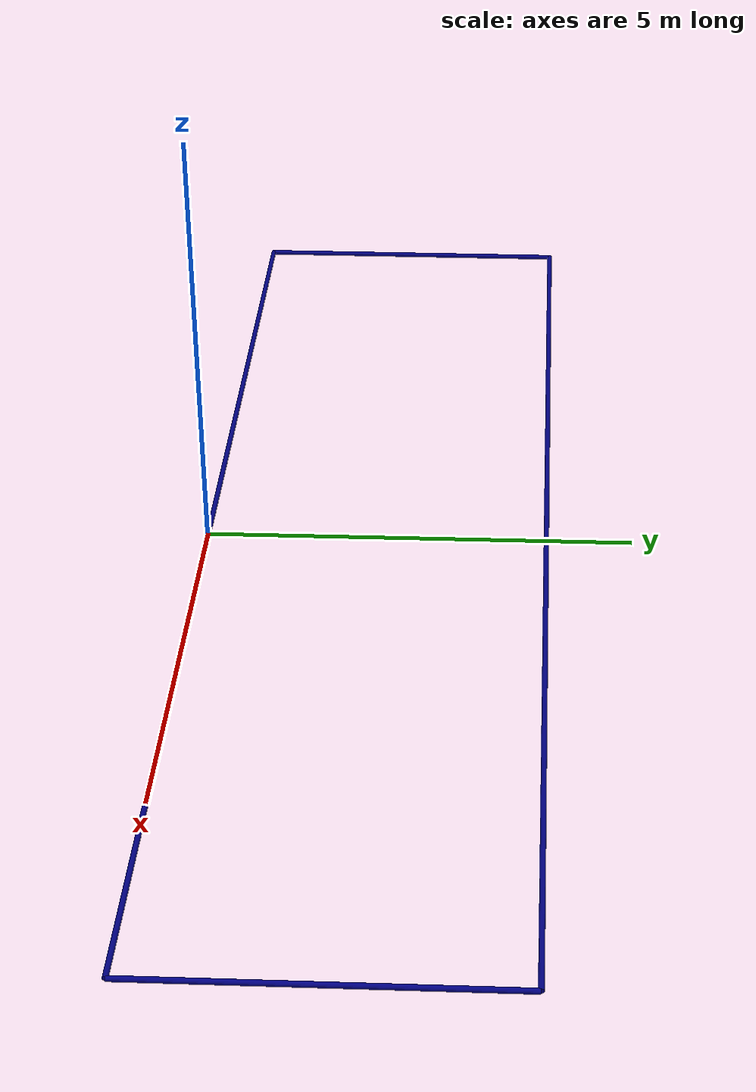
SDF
<?xml version='1.0'?>
<sdf version='1.4'>
  <model name="single-I">
    <static>true</static>

    <link name='left_side'>
      <pose>0 0 0 0 1.5707 0</pose>
      <collision name='collision'>
        <geometry>
          <cylinder>
            <radius>0.03</radius>
            <length>15</length>
          </cylinder>
        </geometry>
      </collision>

      <visual name='lvisual'>
        <geometry>
          <cylinder>
            <radius>0.03</radius>
            <length>15</length>
          </cylinder>
        </geometry>
        <material>
          <ambient>0.0 0.0 0.5 1.0</ambient>
          <diffuse>0.0 0.0 .5 1.00</diffuse>
          <specular>0.0 0.0 .5 1.0</specular>
          <emissive>0.0 0.0 .5 1.0</emissive>
        </material>
      </visual>

    </link>
    <link name='right_side'>

      <pose>0 4 0 0 1.5707 0</pose>
      <collision name='rcollision'>
        <geometry>
          <cylinder>
            <radius>0.03</radius>
            <length>15</length>
          </cylinder>
        </geometry>
      </collision>

      <visual name='rvisual'>
        <geometry>
          <cylinder>
            <radius>0.03</radius>
            <length>15</length>
          </cylinder>
        </geometry>
        <material>
          <ambient>0.0 0.0 0.5 1.0</ambient>
          <diffuse>0.0 0.0 .5 1.00</diffuse>
          <specular>0.0 0.0 .5 1.0</specular>
          <emissive>0.0 0.0 .5 1.0</emissive>
        </material>
      </visual>

    </link>
    <link name='garage_side'>

      <pose>7.5 2 0 0 1.5707 1.5707</pose>
      <collision name='gcollision'>
        <geometry>
          <cylinder>
            <radius>0.03</radius>
            <length>15</length>
          </cylinder>
        </geometry>
      </collision>

      <visual name='gvisual'>
        <geometry>
          <cylinder>
            <radius>0.03</radius>
            <length>4</length>
          </cylinder>
        </geometry>
        <material>
          <ambient>0.0 0.0 0.5 1.0</ambient>
          <diffuse>0.0 0.0 .5 1.00</diffuse>
          <specular>0.0 0.0 .5 1.0</specular>
          <emissive>0.0 0.0 .5 1.0</emissive>
        </material>
      </visual>

    </link>
    <link name='manuevering_side'>

      <pose>-7.5 2 0 0 1.5707 1.5707</pose>
      <collision name='mcollision'>
        <geometry>
          <cylinder>
            <radius>0.03</radius>
            <length>15</length>
          </cylinder>
        </geometry>
      </collision>

      <visual name='mvisual'>
        <geometry>
          <cylinder>
            <radius>0.03</radius>
            <length>4</length>
          </cylinder>
        </geometry>
        <material>
          <ambient>0.0 0.0 0.5 1.0</ambient>
          <diffuse>0.0 0.0 .5 1.00</diffuse>
          <specular>0.0 0.0 .5 1.0</specular>
          <emissive>0.0 0.0 .5 1.0</emissive>
        </material>
      </visual>

    </link>
    <joint type='fixed' name='gr'>
      <child>right_side</child>
      <parent>garage_side</parent>
    </joint>
    <joint type='fixed' name='gl'>
      <child>left_side</child>
      <parent>garage_side</parent>
    </joint>
    <joint type='fixed' name='mr'>
      <child>right_side</child>
      <parent>manuevering_side</parent>
    </joint>
    <joint type='fixed' name='ml'>
      <child>manuevering_side</child>
      <parent>left_side</parent>
    </joint>

  </model>
</sdf>
